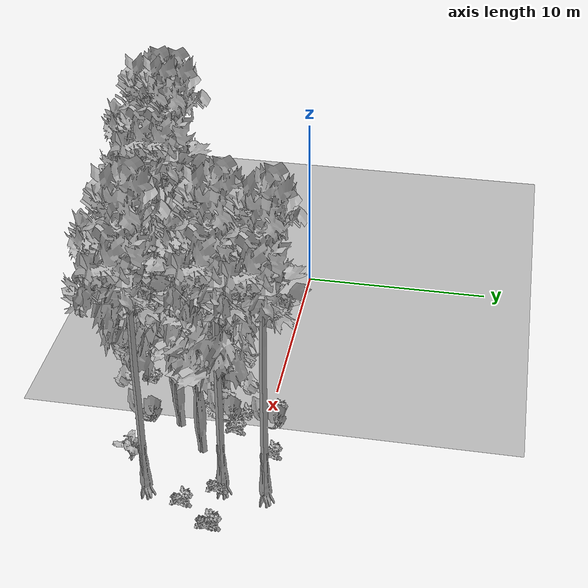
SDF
<sdf version="1.7">
 <world name="default">
  <model name="ground_plane">
   <static>1</static>
   <link name="link">
    <collision name="collision">
     <pose>-50 0 0 0 -0 0</pose>
     <geometry><plane><normal>0 0 1</normal><size>80 80</size></plane></geometry>
     <surface><contact><ode><min_depth>0.01</min_depth><max_vel>0</max_vel></ode></contact></surface>
    </collision>
    <visual name="grass">
     <cast_shadows>0</cast_shadows>
     <geometry>
      <mesh>
       <scale>0.46714285714285714 0.46714285714285714 0.1</scale>
       <uri>file://grass_plane/meshes/grass_plane.dae</uri>
      </mesh>
     </geometry>
    </visual>
   </link>
  </model>
  <model name="Tree 181">
   <static>1</static>
   <pose>16.771419984612166 -1.2722818419178594 0 1.57079 -0 0</pose>
   <link name="link">
    <collision name="collision">
     <geometry><mesh><scale>3.5 5 3.5</scale><uri>model://tree_9/meshes/tree_9.obj</uri></mesh></geometry>
    </collision>
    <visual name="visual">
     <geometry><mesh><scale>3.5 5 3.5</scale><uri>model://tree_9/meshes/tree_9.obj</uri></mesh></geometry>
    </visual>
   </link>
  </model>
  <model name="Tree 376">
   <static>1</static>
   <pose>11.487014353730565 -4.87486658608573 0 1.57079 -0 0</pose>
   <link name="link">
    <collision name="collision">
     <geometry><mesh><scale>3.5 5 3.5</scale><uri>model://tree_2/meshes/tree_2.obj</uri></mesh></geometry>
    </collision>
    <visual name="visual">
     <geometry><mesh><scale>3.5 5 3.5</scale><uri>model://tree_2/meshes/tree_2.obj</uri></mesh></geometry>
    </visual>
   </link>
  </model>
  <model name="Tree 387">
   <static>1</static>
   <pose>17.38207595012235 -4.799182858125519 0 1.57079 -0 0</pose>
   <link name="link">
    <collision name="collision">
     <geometry><mesh><scale>3.5 5 3.5</scale><uri>model://tree_9/meshes/tree_9.obj</uri></mesh></geometry>
    </collision>
    <visual name="visual">
     <geometry><mesh><scale>3.5 5 3.5</scale><uri>model://tree_9/meshes/tree_9.obj</uri></mesh></geometry>
    </visual>
   </link>
  </model>
  <model name="Tree 430">
   <static>1</static>
   <pose>14.661770517376787 -2.7616310506059776 0 1.57079 -0 0</pose>
   <link name="link">
    <collision name="collision">
     <geometry><mesh><scale>3.5 5 3.5</scale><uri>model://tree_2/meshes/tree_2.obj</uri></mesh></geometry>
    </collision>
    <visual name="visual">
     <geometry><mesh><scale>3.5 5 3.5</scale><uri>model://tree_2/meshes/tree_2.obj</uri></mesh></geometry>
    </visual>
   </link>
  </model>
  <model name="Tree 450">
   <static>1</static>
   <pose>7.792937449728335 -6.297450045448002 0 1.57079 -0 0</pose>
   <link name="link">
    <collision name="collision">
     <geometry><mesh><scale>3.5 5 3.5</scale><uri>model://tree_9/meshes/tree_9.obj</uri></mesh></geometry>
    </collision>
    <visual name="visual">
     <geometry><mesh><scale>3.5 5 3.5</scale><uri>model://tree_9/meshes/tree_9.obj</uri></mesh></geometry>
    </visual>
   </link>
  </model>
  <model name="Tree 498">
   <static>1</static>
   <pose>10.769919447774711 -2.4604480745535824 0 1.57079 -0 0</pose>
   <link name="link">
    <collision name="collision">
     <geometry><mesh><scale>3.5 5 3.5</scale><uri>model://tree_2/meshes/tree_2.obj</uri></mesh></geometry>
    </collision>
    <visual name="visual">
     <geometry><mesh><scale>3.5 5 3.5</scale><uri>model://tree_2/meshes/tree_2.obj</uri></mesh></geometry>
    </visual>
   </link>
  </model>
  <model name="Tree 523">
   <static>1</static>
   <pose>13.054543398075161 -4.245126066670636 0 1.57079 -0 0</pose>
   <link name="link">
    <collision name="collision">
     <geometry><mesh><scale>3.5 5 3.5</scale><uri>model://tree_2/meshes/tree_2.obj</uri></mesh></geometry>
    </collision>
    <visual name="visual">
     <geometry><mesh><scale>3.5 5 3.5</scale><uri>model://tree_2/meshes/tree_2.obj</uri></mesh></geometry>
    </visual>
   </link>
  </model>
  <model name="Tree 557">
   <static>1</static>
   <pose>7.792800351303022 -5.451606154293145 0 1.57079 -0 0</pose>
   <link name="link">
    <collision name="collision">
     <geometry><mesh><scale>3.5 5 3.5</scale><uri>model://tree_9/meshes/tree_9.obj</uri></mesh></geometry>
    </collision>
    <visual name="visual">
     <geometry><mesh><scale>3.5 5 3.5</scale><uri>model://tree_9/meshes/tree_9.obj</uri></mesh></geometry>
    </visual>
   </link>
  </model>
  <model name="Tree 613">
   <static>1</static>
   <pose>16.956888298374736 0.8004428993275425 0 1.57079 -0 0</pose>
   <link name="link">
    <collision name="collision">
     <geometry><mesh><scale>3.5 5 3.5</scale><uri>model://tree_9/meshes/tree_9.obj</uri></mesh></geometry>
    </collision>
    <visual name="visual">
     <geometry><mesh><scale>3.5 5 3.5</scale><uri>model://tree_9/meshes/tree_9.obj</uri></mesh></geometry>
    </visual>
   </link>
  </model>
  <model name="Bush 118">
   <static>1</static>
   <pose>12.483818831835734 -2.3876352333007915 0 1.57079 -0 0</pose>
   <link name="link">
    <collision name="collision">
     <geometry><mesh><scale>2 2 2</scale><uri>model://bush_1/meshes/bush_1.obj</uri></mesh></geometry>
     <surface><contact><collide_without_contact>false</collide_without_contact></contact></surface>
    </collision>
    <visual name="visual">
     <geometry><mesh><scale>2 2 2</scale><uri>model://bush_1/meshes/bush_1.obj</uri></mesh></geometry>
    </visual>
   </link>
  </model>
  <model name="Bush 169">
   <static>1</static>
   <pose>19.162914018571392 -1.3236080025507206 0 1.57079 -0 0</pose>
   <link name="link">
    <collision name="collision">
     <geometry><mesh><scale>2 2 2</scale><uri>model://bush_2/meshes/bush_2.obj</uri></mesh></geometry>
     <surface><contact><collide_without_contact>false</collide_without_contact></contact></surface>
    </collision>
    <visual name="visual">
     <geometry><mesh><scale>2 2 2</scale><uri>model://bush_2/meshes/bush_2.obj</uri></mesh></geometry>
    </visual>
   </link>
  </model>
  <model name="Bush 170">
   <static>1</static>
   <pose>15.967334251492069 -5.943104846644225 0 1.57079 -0 0</pose>
   <link name="link">
    <collision name="collision">
     <geometry><mesh><scale>2 2 2</scale><uri>model://bush_0/meshes/bush_0.obj</uri></mesh></geometry>
     <surface><contact><collide_without_contact>false</collide_without_contact></contact></surface>
    </collision>
    <visual name="visual">
     <geometry><mesh><scale>2 2 2</scale><uri>model://bush_0/meshes/bush_0.obj</uri></mesh></geometry>
    </visual>
   </link>
  </model>
  <model name="Bush 313">
   <static>1</static>
   <pose>9.675699090517618 -3.240410460198781 0 1.57079 -0 0</pose>
   <link name="link">
    <collision name="collision">
     <geometry><mesh><scale>2 2 2</scale><uri>model://bush_5/meshes/bush_5.obj</uri></mesh></geometry>
     <surface><contact><collide_without_contact>false</collide_without_contact></contact></surface>
    </collision>
    <visual name="visual">
     <geometry><mesh><scale>2 2 2</scale><uri>model://bush_5/meshes/bush_5.obj</uri></mesh></geometry>
    </visual>
   </link>
  </model>
  <model name="Bush 316">
   <static>1</static>
   <pose>16.888210813489863 -1.5129044350088705 0 1.57079 -0 0</pose>
   <link name="link">
    <collision name="collision">
     <geometry><mesh><scale>2 2 2</scale><uri>model://bush_2/meshes/bush_2.obj</uri></mesh></geometry>
     <surface><contact><collide_without_contact>false</collide_without_contact></contact></surface>
    </collision>
    <visual name="visual">
     <geometry><mesh><scale>2 2 2</scale><uri>model://bush_2/meshes/bush_2.obj</uri></mesh></geometry>
    </visual>
   </link>
  </model>
  <model name="Bush 317">
   <static>1</static>
   <pose>10.013562329028503 -3.2888953837171755 0 1.57079 -0 0</pose>
   <link name="link">
    <collision name="collision">
     <geometry><mesh><scale>2 2 2</scale><uri>model://bush_2/meshes/bush_2.obj</uri></mesh></geometry>
     <surface><contact><collide_without_contact>false</collide_without_contact></contact></surface>
    </collision>
    <visual name="visual">
     <geometry><mesh><scale>2 2 2</scale><uri>model://bush_2/meshes/bush_2.obj</uri></mesh></geometry>
    </visual>
   </link>
  </model>
  <model name="Bush 343">
   <static>1</static>
   <pose>12.879842745780827 -1.5092991743266992 0 1.57079 -0 0</pose>
   <link name="link">
    <collision name="collision">
     <geometry><mesh><scale>2 2 2</scale><uri>model://bush_2/meshes/bush_2.obj</uri></mesh></geometry>
     <surface><contact><collide_without_contact>false</collide_without_contact></contact></surface>
    </collision>
    <visual name="visual">
     <geometry><mesh><scale>2 2 2</scale><uri>model://bush_2/meshes/bush_2.obj</uri></mesh></geometry>
    </visual>
   </link>
  </model>
  <model name="Bush 372">
   <static>1</static>
   <pose>9.916129130678996 -6.590304351052502 0 1.57079 -0 0</pose>
   <link name="link">
    <collision name="collision">
     <geometry><mesh><scale>2 2 2</scale><uri>model://bush_2/meshes/bush_2.obj</uri></mesh></geometry>
     <surface><contact><collide_without_contact>false</collide_without_contact></contact></surface>
    </collision>
    <visual name="visual">
     <geometry><mesh><scale>2 2 2</scale><uri>model://bush_2/meshes/bush_2.obj</uri></mesh></geometry>
    </visual>
   </link>
  </model>
  <model name="Bush 384">
   <static>1</static>
   <pose>11.8273716604511 -1.243269708779522 0 1.57079 -0 0</pose>
   <link name="link">
    <collision name="collision">
     <geometry><mesh><scale>2 2 2</scale><uri>model://bush_2/meshes/bush_2.obj</uri></mesh></geometry>
     <surface><contact><collide_without_contact>false</collide_without_contact></contact></surface>
    </collision>
    <visual name="visual">
     <geometry><mesh><scale>2 2 2</scale><uri>model://bush_2/meshes/bush_2.obj</uri></mesh></geometry>
    </visual>
   </link>
  </model>
  <model name="Bush 422">
   <static>1</static>
   <pose>12.64523886922349 -6.147706584163913 0 1.57079 -0 0</pose>
   <link name="link">
    <collision name="collision">
     <geometry><mesh><scale>2 2 2</scale><uri>model://bush_2/meshes/bush_2.obj</uri></mesh></geometry>
     <surface><contact><collide_without_contact>false</collide_without_contact></contact></surface>
    </collision>
    <visual name="visual">
     <geometry><mesh><scale>2 2 2</scale><uri>model://bush_2/meshes/bush_2.obj</uri></mesh></geometry>
    </visual>
   </link>
  </model>
  <model name="Bush 440">
   <static>1</static>
   <pose>19.166207738199233 -1.4886625294740412 0 1.57079 -0 0</pose>
   <link name="link">
    <collision name="collision">
     <geometry><mesh><scale>2 2 2</scale><uri>model://bush_2/meshes/bush_2.obj</uri></mesh></geometry>
     <surface><contact><collide_without_contact>false</collide_without_contact></contact></surface>
    </collision>
    <visual name="visual">
     <geometry><mesh><scale>2 2 2</scale><uri>model://bush_2/meshes/bush_2.obj</uri></mesh></geometry>
    </visual>
   </link>
  </model>
  <model name="Bush 495">
   <static>1</static>
   <pose>17.974778337795826 -2.959789452505568 0 1.57079 -0 0</pose>
   <link name="link">
    <collision name="collision">
     <geometry><mesh><scale>2 2 2</scale><uri>model://bush_2/meshes/bush_2.obj</uri></mesh></geometry>
     <surface><contact><collide_without_contact>false</collide_without_contact></contact></surface>
    </collision>
    <visual name="visual">
     <geometry><mesh><scale>2 2 2</scale><uri>model://bush_2/meshes/bush_2.obj</uri></mesh></geometry>
    </visual>
   </link>
  </model>
  <model name="Bush 609">
   <static>1</static>
   <pose>14.265816018484912 0.5673087694621017 0 1.57079 -0 0</pose>
   <link name="link">
    <collision name="collision">
     <geometry><mesh><scale>2 2 2</scale><uri>model://bush_2/meshes/bush_2.obj</uri></mesh></geometry>
     <surface><contact><collide_without_contact>false</collide_without_contact></contact></surface>
    </collision>
    <visual name="visual">
     <geometry><mesh><scale>2 2 2</scale><uri>model://bush_2/meshes/bush_2.obj</uri></mesh></geometry>
    </visual>
   </link>
  </model>
  <model name="Bush 627">
   <static>1</static>
   <pose>11.252066036636762 0.29329760427076224 0 1.57079 -0 0</pose>
   <link name="link">
    <collision name="collision">
     <geometry><mesh><scale>2 2 2</scale><uri>model://bush_2/meshes/bush_2.obj</uri></mesh></geometry>
     <surface><contact><collide_without_contact>false</collide_without_contact></contact></surface>
    </collision>
    <visual name="visual">
     <geometry><mesh><scale>2 2 2</scale><uri>model://bush_2/meshes/bush_2.obj</uri></mesh></geometry>
    </visual>
   </link>
  </model>
 </world>
</sdf>
